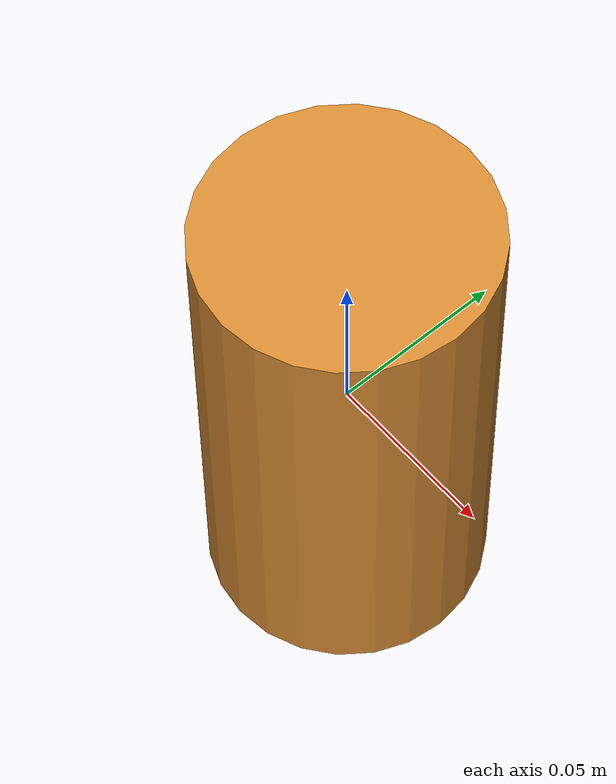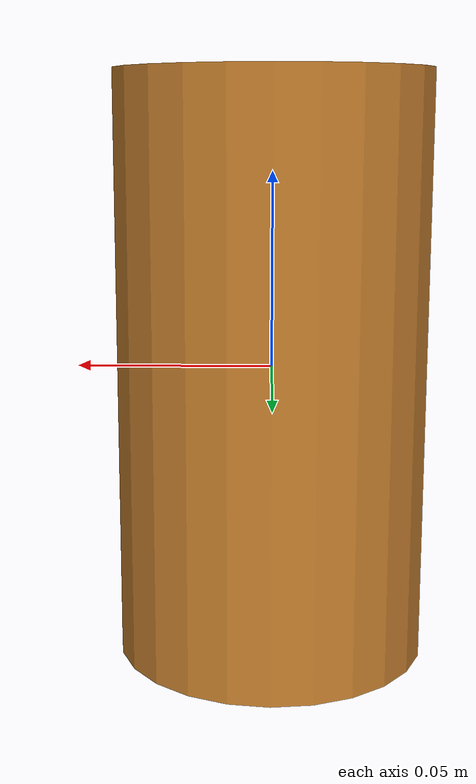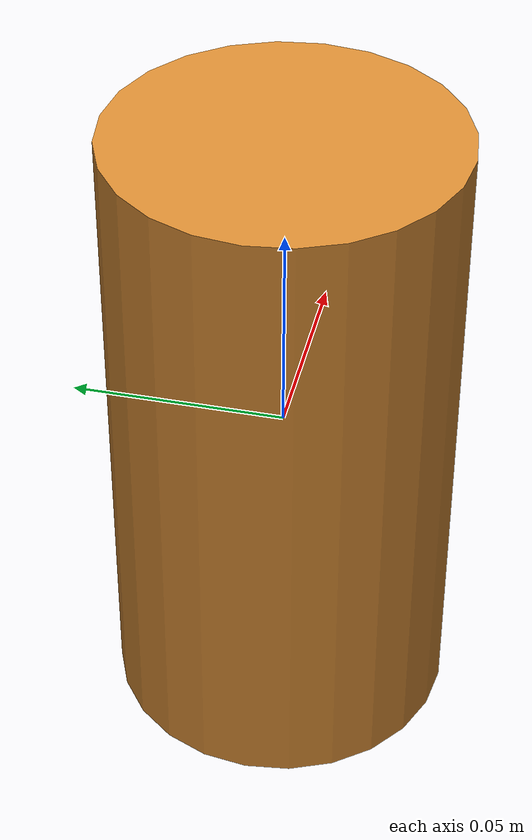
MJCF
<mujoco model="pole">
  <worldbody>
    <body name="object">
      <geom name="pole" type="cylinder" size="0.04 0.075" mass="0.2"
            contype="1" conaffinity="1" condim="4" friction="1 0.5 0.01"
            rgba="0.85 0.55 0.20 1"/>
    </body>
  </worldbody>
</mujoco>
